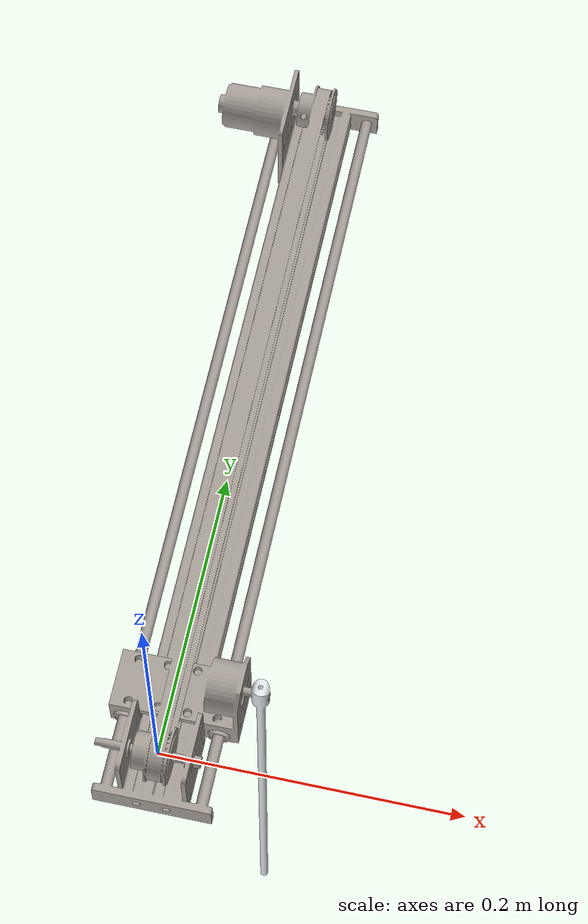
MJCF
<mujoco model="inverted pendulum">
    <compiler angle="radian" meshdir="./meshes/"/>
    <size njmax="500" nconmax="100" />
    <option timestep="0.0005" integrator="RK4" gravity="0 0 -9.8">
        <flag sensornoise="enable" contact="enable" energy="disable" gravity="enable"/>
    </option>

    <default>
		<joint armature="0" damping="0.001" limited="true"/>
        <geom contype="0" friction="1 0.1 0.1" rgba="0.7 0.7 0 1"/>
		<tendon/>
        <motor ctrlrange="-3 3"/>
	</default>
    <asset>
        <mesh name="base" file="base.STL" />
        <mesh name="slider" file="slider.STL" />
        <mesh name="pole" file="pole.STL" />
    </asset>
    <worldbody>
        <light diffuse=".5 .5 .5" pos="0 0 3" dir="0 0 -1"/>

        <body name="rail" pos="0 0 0">
            <geom name="rail" pos="0 0 0" type="mesh" rgba="0.647059 0.619608 0.588235 1" mass="10" mesh="base" />

            <body name="slider" pos="0.045 0.0525 0.0029958">
                <inertial pos="-0.0313774 3.49624e-09 -0.0201587" quat="-6.99165e-07 0.707107 6.99165e-07 0.707107" mass="0.561162" diaginertia="0.000296399 0.000278043 0.00011598" />
                <joint name="slide" pos="0 0 0" axis="0 1 0"  type="slide"  limited="true" range="0 0.4" />
                <geom type="mesh" rgba="0.647059 0.619608 0.588235 1"  mesh="slider" />·

                <body name="pole" pos="0.011 0 0">
                    <inertial pos="3.73384e-06 9.27152e-07 -0.169671" quat="1 6.07386e-06 -2.43248e-05 0.000234566" mass="0.1" diaginertia="0.001518857 0.001518823 6.78e-07" />
                    <joint name="hinge" pos="0 0 0" axis="1 0 0"  damping="0.0005" limited="false"/>
                    <geom type="mesh"  rgba="0.898039 0.917647 0.929412 1" mesh="pole" />
                </body>
            </body>
        </body>
    </worldbody>

    <actuator>
		<motor joint="slide" name="slide"  gear="1" ctrlrange="-10 10" ctrllimited="true"/>
	</actuator>
    <sensor>
        <jointpos name="jSLp" joint="slide"   noise="0.05"/>
        <jointpos name="jHIp" joint="hinge"   noise="0.05"/>
        <jointvel name="jSLv" joint="slide"   noise="0.05"/>
        <jointvel name="jHIv" joint="hinge"   noise="0.05"/>
    </sensor>
</mujoco>
